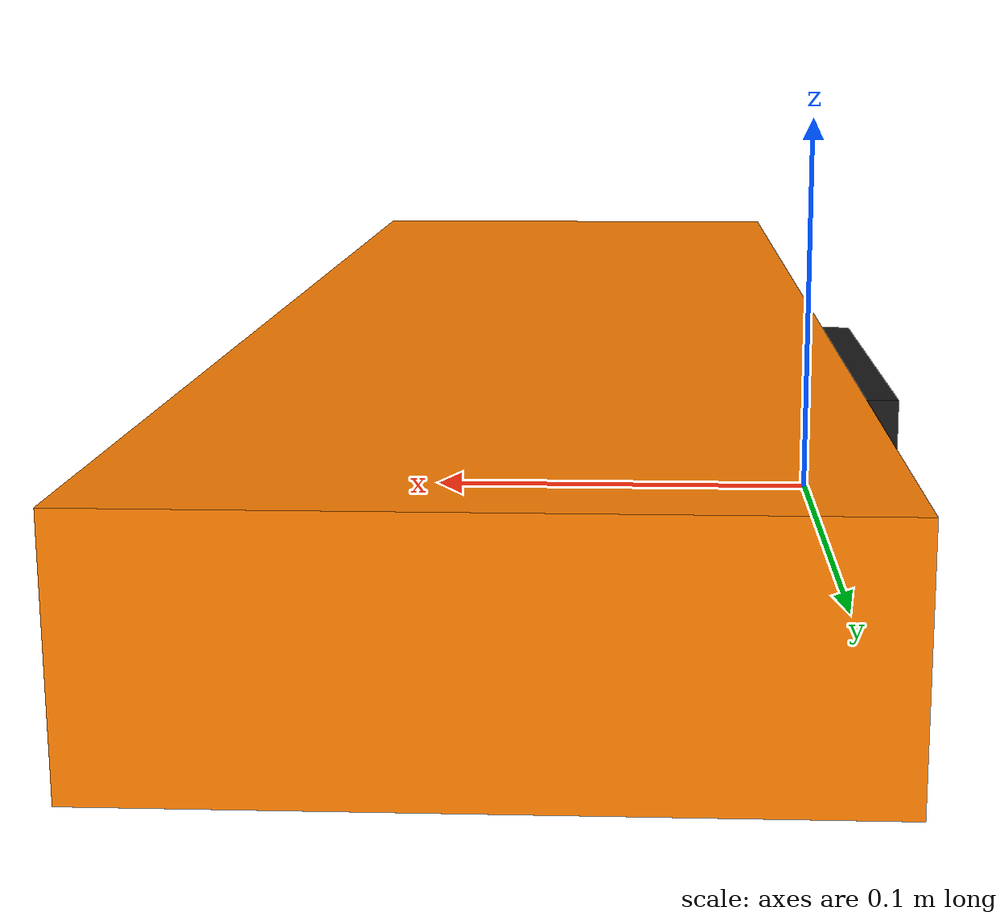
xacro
<?xml version="1.0"?>
<!--
Copyright (c) 2019, I3D Robotics Ltd.
-->

<robot name="deimos"
    xmlns:xacro="http://ros.org/wiki/xacro">

    <link name="world" />

    <xacro:include filename="$(find deimos)/urdf/i3dr_stereo_camera.urdf.xacro" />

    <xacro:i3dr_stereo_camera camera_name="deimos" baseline="0.06" toe_in="0" width="0.038" height="0.10175" length="0.03242" mount_offset_y="-0.015" r="0.1" g="0.1" b="0.1" />

    <joint name="deimos_camera_link" type="fixed">
        <origin xyz="0 0 0" rpy="0 0 0" />
        <parent link="world" />
        <child link="deimos_base_link" />
    </joint>

    <xacro:i3dr_stereo_camera camera_name="phobos" baseline="0.3" toe_in="0.139626" width="0.140" height="0.390" length="0.050" mount_offset_x="0.07" r="1" g="0.5" b="0"/>

    <joint name="phobos_camera_link" type="fixed">
        <origin xyz="0 0 0" rpy="0 0 0" />
        <parent link="world" />
        <child link="phobos_base_link" />
    </joint>

</robot>

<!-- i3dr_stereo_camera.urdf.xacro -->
<!--
Copyright (c) 2019, I3D Robotics Ltd.
-->

<robot xmlns:xacro="http://ros.org/wiki/xacro">
    <xacro:macro name="i3dr_stereo_camera" params="camera_name baseline toe_in width height length image_format:=RGB8 image_height:=640 image_width:=480 hfov:=1.579 focus_near:=0 focus_far:=100 camera_offset_x:=0 camera_offset_y:=0 camera_offset_z:=0 mount_offset_x:=0 mount_offset_y:=0 mount_offset_z:=0 r:=1 g:=0 b:=0 a:=1">
        <link name="${camera_name}_cameraLeft_optical" />
        <link name="${camera_name}_cameraRight_optical" />
        <link name="${camera_name}_cameraLeft" />
        <link name="${camera_name}_cameraRight" />

        <link name="${camera_name}_base_link" />

        <link name="${camera_name}_center">
            <visual>
                <origin xyz="0 0 0" rpy="0 0 0"/>
                <geometry>
                    <box size="${width} ${height} ${length}"/>
                </geometry>
                <material name="${camera_name}_camera_colour">
                    <color rgba="${r} ${g} ${b} ${a}"/>
                </material>
            </visual>
        </link>

        <joint name="${camera_name}_right_camera_joint" type="fixed">
            <parent link="${camera_name}_center"/>
            <child link="${camera_name}_cameraRight"/>
            <origin xyz="${camera_offset_x} -${(baseline/2)+camera_offset_y} ${camera_offset_z}" rpy="0 0 0" />
        </joint>

        <joint name="${camera_name}_left_camera_joint" type="fixed">
            <parent link="${camera_name}_center"/>
            <child link="${camera_name}_cameraLeft"/>
            <origin xyz="${camera_offset_x} ${(baseline/2)+camera_offset_y} ${camera_offset_z}" rpy="0 0 0" />
        </joint>

        <joint name="${camera_name}_left_optical_joint" type="fixed">
            <parent link="${camera_name}_cameraLeft"/>
            <child link="${camera_name}_cameraLeft_optical"/>
            <!-- Correct for the optical frame orientation -->
            <origin xyz="0 0 0" rpy="${-pi/2} 0 ${(-pi/2)-toe_in}" />
        </joint>

        <joint name="${camera_name}_right_optical_joint" type="fixed">
            <parent link="${camera_name}_cameraRight"/>
            <child link="${camera_name}_cameraRight_optical"/>
            <!-- Correct for the optical frame orientation -->
            <origin xyz="0 0 0" rpy="${-pi/2} 0 ${(-pi/2)+toe_in}" />
        </joint>

        <sensor name="${camera_name}_right_camera_sensor" update_rate="60">
            <parent link="${camera_name}_cameraRight_optical"/>
            <origin xyz="0 0 0" rpy="0 0 0"/>
            <camera>
                <image width="${image_width}" height="${image_height}" hfov="${hfov}" format="${image_format}" near="${focus_near}" far="${focus_far}"/>
            </camera>
        </sensor>

        <joint name="${camera_name}_mount_center_joint" type="fixed">
            <parent link="${camera_name}_base_link"/>
            <child link="${camera_name}_center"/>
            <origin xyz="${mount_offset_x} ${mount_offset_y} ${(length/2)+mount_offset_z}" rpy="0 0 0" />
        </joint>

    </xacro:macro>
</robot>
